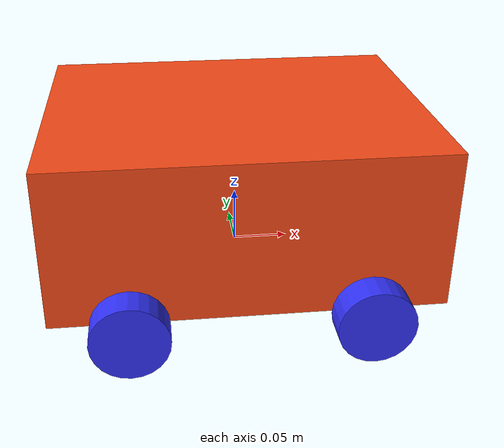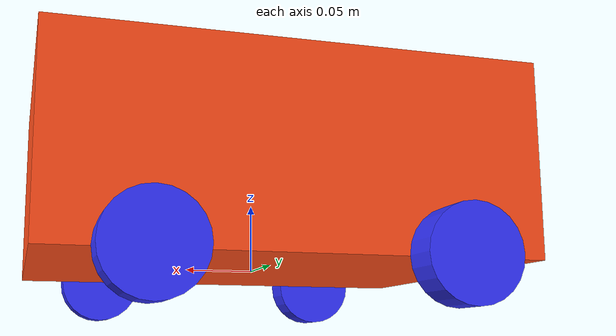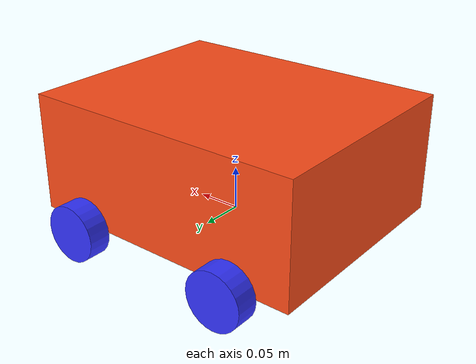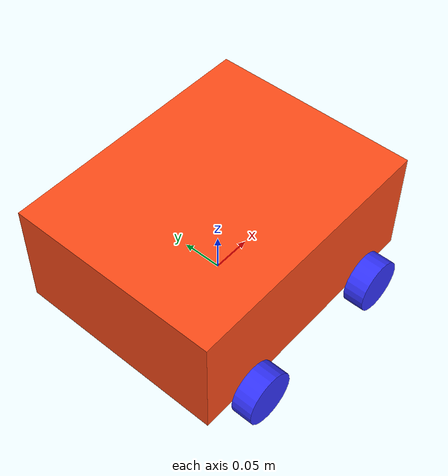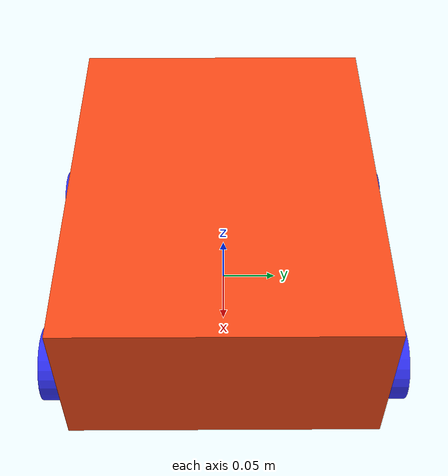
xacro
<?xml version="1.0"?>
<robot xmlns:xacro="http://www.ros.org/wiki/xacro" >

    <xacro:include filename="inertial_macros.xacro"/>

    <xacro:property name="chassis_length" value="0.335"/>
    <xacro:property name="chassis_width" value="0.265"/>
    <xacro:property name="chassis_height" value="0.138"/>
    <xacro:property name="chassis_mass" value="1.0"/>
    <xacro:property name="wheel_radius" value="0.033"/>
    <xacro:property name="wheel_thickness" value="0.026"/>
    <xacro:property name="wheel_mass" value="0.05"/>
    <xacro:property name="wheel_offset_x" value="0.226"/>
    <xacro:property name="wheel_offset_y" value="0.1485"/>
    <xacro:property name="wheel_offset_z" value="0.01"/>
    <xacro:property name="wheel_dist" value="0.2"/>

    <material name="white">
        <color rgba="1 1 1 1" />
    </material>

    <material name="orange">
        <color rgba="1 0.3 0.1 1"/>
    </material>

    <material name="blue">
        <color rgba="0.2 0.2 1 1"/>
    </material>

    <material name="black">
        <color rgba="0 0 0 1"/>
    </material>

    <material name="red">
        <color rgba="1 0 0 1"/>
    </material>

    <!-- BASE LINK -->

    <link name="base_link">

    </link>

    <!-- BASE_FOOTPRINT LINK -->

    <joint name="base_footprint_joint" type="fixed">
        <parent link="base_link"/>
        <child link="base_footprint"/>
        <origin xyz="0 0 0" rpy="0 0 0"/>
    </joint>

    <link name="base_footprint">
    </link>

    <!-- CHASSIS LINK -->

    <joint name="chassis_joint" type="fixed">
        <parent link="base_link"/>
        <child link="chassis"/>
        <origin xyz="${-chassis_length/2} 0 0"/>
    </joint>

    <link name="chassis">
        <visual>
            <origin xyz="${chassis_length/2} 0 ${chassis_height/2}"/>
            <geometry>
                <!--mesh filename="package://q_bot/description/meshes/chassis.dae" scale="1 1 1"/-->
                <box size="${chassis_length} ${chassis_width} ${chassis_height}"/>
            </geometry>
            <material name="orange"/>
        </visual>
        <collision>
            <origin xyz="${chassis_length/2} 0 ${chassis_height/2}"/>
            <geometry>
                <box size="${chassis_length} ${chassis_width} ${chassis_height}"/>
            </geometry>
        </collision>
        <xacro:inertial_box mass="0.5" x="${chassis_length}" y="${chassis_width}" z="${chassis_height}">
            <origin xyz="${chassis_length/2} 0 ${chassis_height/2}" rpy="0 0 0"/>
        </xacro:inertial_box>
    </link>

    <gazebo reference="chassis">
        <material>Gazebo/Orange</material>
    </gazebo>

    <!-- LEFT WHEEL FRONT LINK -->

    <joint name="left_wheel_front_joint" type="continuous">
        <parent link="base_link"/>
        <child link="left_wheel_front"/>
        <origin xyz="${wheel_dist/2} ${wheel_offset_y} 0" rpy="-${pi/2} 0 0" />
        <axis xyz="0 0 1"/>
    </joint>

    <link name="left_wheel_front">
        <visual>
            <geometry>
                <cylinder radius="${wheel_radius}" length="${wheel_thickness}"/>
            </geometry>
            <material name="blue"/>
        </visual>
        <collision>
            <geometry>
                <cylinder radius="${wheel_radius}" length="${wheel_thickness}"/>
            </geometry>
        </collision>
        <xacro:inertial_cylinder mass="${wheel_mass}" length="${wheel_thickness}" radius="${wheel_radius}">
            <origin xyz="0 0 0" rpy="0 0 0"/>
        </xacro:inertial_cylinder>
    </link>

    <gazebo reference="left_wheel_front">
        <material>Gazebo/Blue</material>
    </gazebo>

    <!-- LEFT WHEEL BACK LINK -->

    <joint name="left_wheel_back_joint" type="continuous">
        <parent link="base_link"/>
        <child link="left_wheel_back"/>
        <origin xyz="${-wheel_dist/2} ${wheel_offset_y} 0" rpy="-${pi/2} 0 0" />
        <axis xyz="0 0 1"/>
    </joint>

    <link name="left_wheel_back">
        <visual>
            <geometry>
                <cylinder radius="${wheel_radius}" length="${wheel_thickness}"/>
            </geometry>
            <material name="blue"/>
        </visual>
        <collision>
            <geometry>
                <cylinder radius="${wheel_radius}" length="${wheel_thickness}"/>
            </geometry>
        </collision>
        <xacro:inertial_cylinder mass="${wheel_mass}" length="${wheel_thickness}" radius="${wheel_radius}">
            <origin xyz="0 0 0" rpy="0 0 0"/>
        </xacro:inertial_cylinder>
    </link>

    <gazebo reference="left_wheel_back">
        <material>Gazebo/Blue</material>
    </gazebo>

    <!-- RIGHT WHEEL FRONT LINK -->

    <joint name="right_wheel_front_joint" type="continuous">
        <parent link="base_link"/>
        <child link="right_wheel_front"/>
        <origin xyz="${wheel_dist/2} ${-wheel_offset_y} 0" rpy="${pi/2} 0 0" />
        <axis xyz="0 0 -1"/>
    </joint>

    <link name="right_wheel_front">
        <visual>
            <geometry>
                <cylinder radius="${wheel_radius}" length="${wheel_thickness}"/>
            </geometry>
            <material name="blue"/>
        </visual>
        <collision>
            <geometry>
                <cylinder radius="${wheel_radius}" length="${wheel_thickness}"/>
            </geometry>
        </collision>
        <xacro:inertial_cylinder mass="${wheel_mass}" length="${wheel_thickness}" radius="${wheel_radius}">
            <origin xyz="0 0 0" rpy="0 0 0"/>
        </xacro:inertial_cylinder>
    </link>

    <gazebo reference="right_wheel_front">
        <material>Gazebo/Blue</material>
    </gazebo>

    <!-- RIGHT WHEEL BACK LINK -->

    <joint name="right_wheel_back_joint" type="continuous">
        <parent link="base_link"/>
        <child link="right_wheel_back"/>
        <origin xyz="${-wheel_dist/2} ${-wheel_offset_y} 0" rpy="${pi/2} 0 0" />
        <axis xyz="0 0 -1"/>
    </joint>

    <link name="right_wheel_back">
        <visual>
            <geometry>
                <cylinder radius="${wheel_radius}" length="${wheel_thickness}"/>
            </geometry>
            <material name="blue"/>
        </visual>
        <collision>
            <geometry>
                <cylinder radius="${wheel_radius}" length="${wheel_thickness}"/>
            </geometry>
        </collision>
        <xacro:inertial_cylinder mass="${wheel_mass}" length="${wheel_thickness}" radius="${wheel_radius}">
            <origin xyz="0 0 0" rpy="0 0 0"/>
        </xacro:inertial_cylinder>
    </link>

    <gazebo reference="right_wheel_back">
        <material>Gazebo/Blue</material>
    </gazebo>

</robot>
